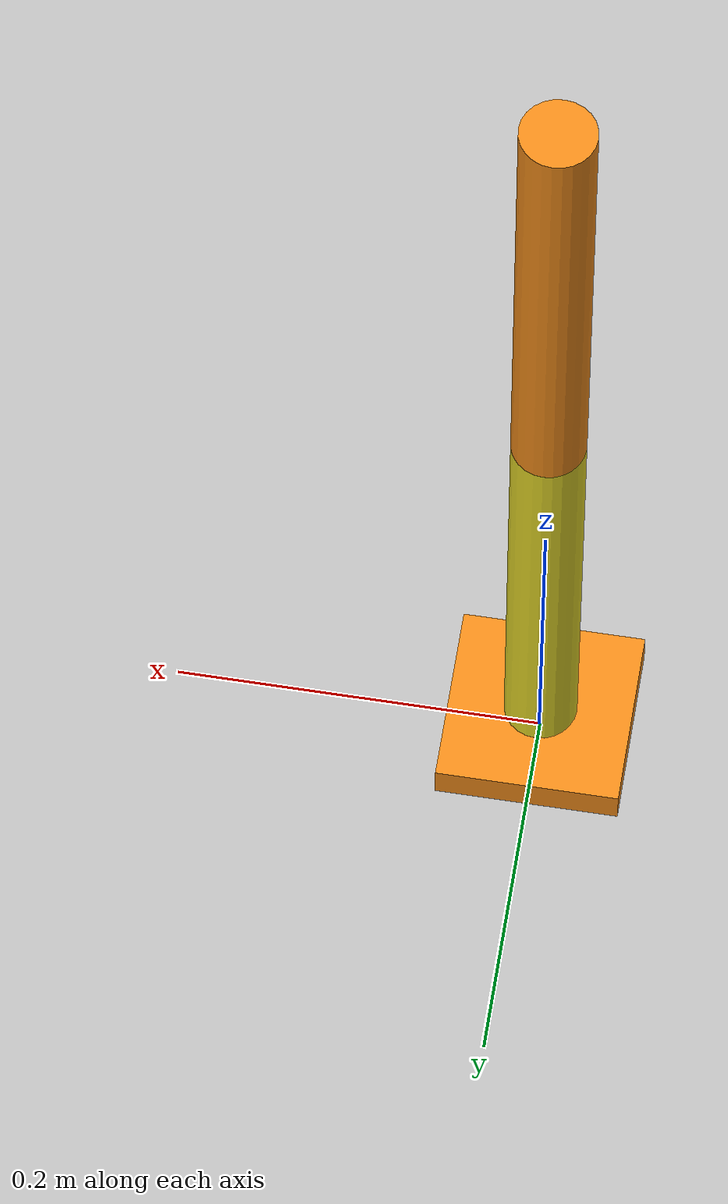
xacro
<?xml version="1.0"?>
<robot xmlns:xacro ="http://www.ros.org/wiki/xacro">

    <xacro:property name="arm_base_length" value="0.1"/>
    <xacro:property name="arm_base_width" value="0.1" />
    <xacro:property name="arm_base_height" value="0.02" />
    <xacro:property name="arm_base_mass" value="0.5" />

    <xacro:property name="forearm_radius" value="0.02" />
    <xacro:property name="forearm_length" value="0.3" />
    <xacro:property name="forearm_mass" value="0.3" />

    <xacro:property name="hand_radius" value="0.02" />
    <xacro:property name="hand_length" value="0.3" />
    <xacro:property name="hand_mass" value="0.3" />

    <link name="arm_base_link">
        <visual>
            <geometry>
                <box size="${arm_base_length} ${arm_base_width} ${arm_base_height}"/>
            </geometry>
            <origin xyz="0.0 0.0 ${arm_base_height /2}" rpy="0.0 0.0 0.0"/>
            <material name="orange"/>
        </visual>
        <collision>
            <geometry>
                <box size="${arm_base_length} ${arm_base_width} ${arm_base_height}"/>
            </geometry>
            <origin xyz="0.0 0.0 ${arm_base_height /2}" rpy="0.0 0.0 0.0"/>
        </collision>
        <xacro:box_inertia m="${arm_base_mass}" l="${2*arm_base_length}" w="${2*arm_base_width}" h="${2*arm_base_height}" xyz="0.0 0.0 ${arm_base_height /2}" rpy="0 0 0"/>
    </link>

    <link name="forearm_link">
        <visual>
            <geometry>
                <cylinder radius="${forearm_radius}" length="${forearm_length}"/>
            </geometry>
            <origin xyz="0.0 0.0 ${forearm_length /2.0}" rpy="0.0 0.0 0.0"/>
            <material name="yellow"/>
        </visual>

        <collision>
            <geometry>
                <cylinder radius="${forearm_radius}" length="${forearm_length}"/>
            </geometry>
            <origin xyz="0.0 0.0 ${forearm_length /2.0}" rpy="0.0 0.0 0.0"/>
        </collision>
        <xacro:cylinder_inertia m="${forearm_mass}" r="${2*forearm_radius}" h="${2*forearm_length}" xyz="0.0 0.0 ${forearm_length /2.0}" rpy="0 0 0"/>
    </link>

    <link name="hand_link">
        <visual>
            <geometry>
                <cylinder radius="${hand_radius}" length="${hand_length}"/>
            </geometry>
            <origin xyz="0.0 0.0 ${hand_length /2.0}" rpy="0.0 0.0 0.0"/>
            <material name="orange"/>
        </visual>
        <collision>
            <geometry>
                <cylinder radius="${hand_radius}" length="${hand_length}"/>
            </geometry>
            <origin xyz="0.0 0.0 ${hand_length /2.0}" rpy="0.0 0.0 0.0"/>
        </collision>
        <xacro:cylinder_inertia m="${hand_mass}" r="${2*hand_radius}" h="${2*hand_length}" xyz="0.0 0.0 ${hand_length /2.0}" rpy="0 0 0"/>
    </link>

    <joint name="arm_base_forearm_joint" type="revolute">
        <origin xyz="0.0 0.0 0.0" rpy="0.0 0.0 0.0"/>
        <parent link="arm_base_link"/>
        <child link="forearm_link"/>
        <axis xyz="0.0 1 0.0"/>
        <limit lower="0.0" upper="${pi / 2.0}" effort="100" velocity="100"/>
        <dynamics friction="0.05" damping="0.1"/>
    </joint>

    <joint name="forearm_hand_joint" type="revolute">
        <origin xyz="0.0 0.0 ${forearm_length}" rpy="0.0 0.0 0.0"/>
        <parent link="forearm_link"/>
        <child link="hand_link"/>
        <axis xyz="0.0 1 0.0"/>
        <limit lower="0.0" upper="${pi / 2.0}" effort="100" velocity="100"/>
        <dynamics friction="0.05" damping="0.1"/>
    </joint>
</robot>
